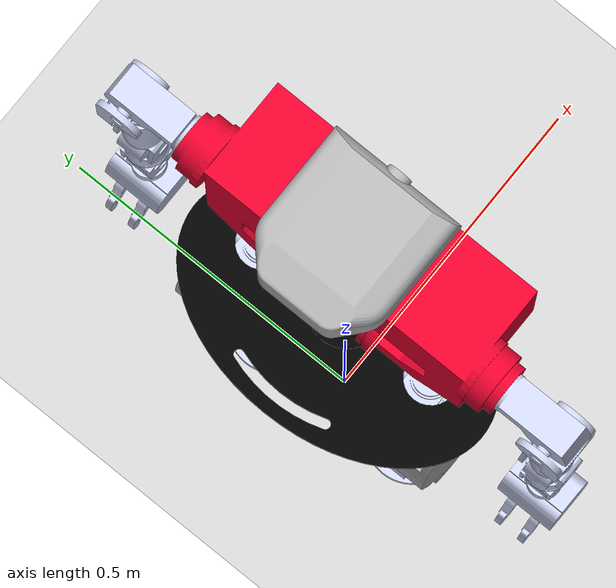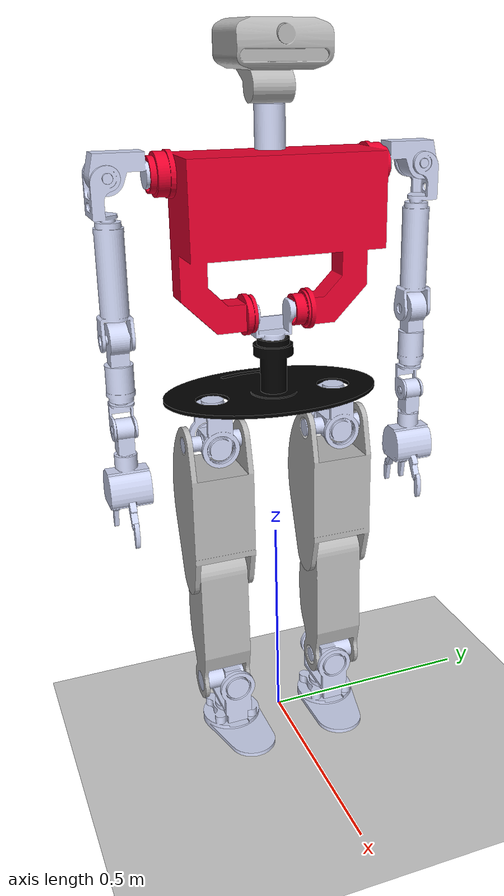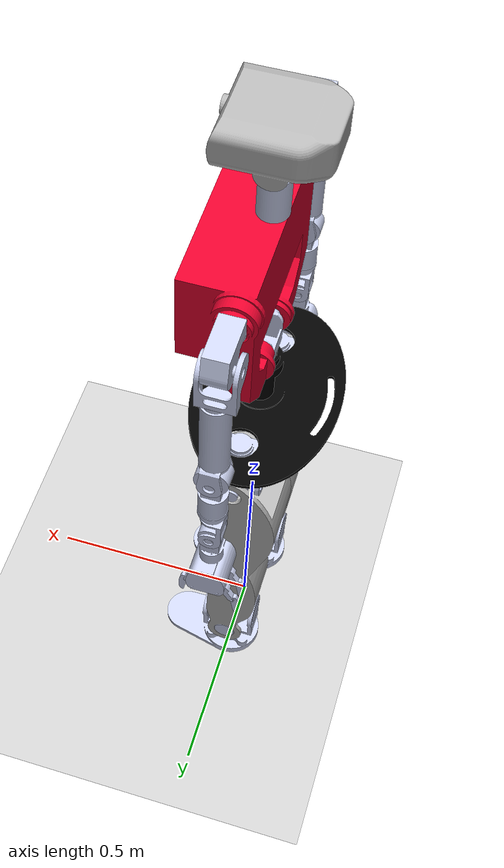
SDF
<?xml version="1.0"?>
<sdf version="1.6">
  <world name="default">

    <include>
      <uri>model://sun</uri>
    </include>

    <include>
      <uri>model://ground_plane</uri>
    </include>

    <include>
      <uri>model://teo_lacqueyFetch</uri>
    </include>

  </world>
</sdf>

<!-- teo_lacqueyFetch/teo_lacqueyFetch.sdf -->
<sdf version='1.6'>
  <model name='TEO_lacqueyFetch'>

    <include>
      <uri>model://teo</uri>
    </include>

    <include>
      <pose>0 -0.34692 0.8122 0 -0 0</pose>
      <uri>model://teo_lacqueyFetch/rightLacqueyFetch</uri>
    </include>

    <joint name='RightWrist' type='fixed'>
      <parent>TEO::TEO_rightArm::FrontalRightWrist_link</parent>
      <child>TEO_rightLacqueyFetch::RightWrist_link</child>
    </joint>

    <include>
      <pose>0 0.34692 0.8122 0 -0 0</pose>
      <uri>model://teo_lacqueyFetch/leftLacqueyFetch</uri>
    </include>

    <joint name='LeftWrist' type='fixed'>
      <parent>TEO::TEO_leftArm::FrontalLeftWrist_link</parent>
      <child>TEO_leftLacqueyFetch::LeftWrist_link</child>
    </joint>

    <plugin name='robotinterface_teo_lacqueyFetch' filename='libgazebo_yarp_robotinterface.so'>
      <yarpRobotInterfaceConfigurationFile>model://teo_lacqueyFetch/conf/teo_lacqueyFetch_nws.xml</yarpRobotInterfaceConfigurationFile>
    </plugin>

  </model>
</sdf>

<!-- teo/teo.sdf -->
<sdf version='1.6'>
  <model name='TEO'>

    <pose>0 0 0.845 0 -0 0</pose>

    <link name='RootWaist_links'>
      <pose>0 0 0 0 -0 0</pose>
      <inertial>
        <pose>-0.010985 -0.000323 0.033148 0 -0 0</pose>
        <mass>2.5</mass>
        <inertia>
          <ixx>0.038530767</ixx>
          <ixy>-0.000000135</ixy>
          <ixz>0.000238121</ixz>
          <iyy>0.017354343</iyy>
          <iyz>-4.8e-10</iyz>
          <izz>0.053231634</izz>
        </inertia>
      </inertial>
      <visual name='RootWaist_links_visual'>
        <geometry>
          <mesh>
            <uri>model://teo/meshes/visual/RootWaist_links.dae</uri>
          </mesh>
        </geometry>
        <material>
          <ambient>0 0 0 1</ambient>
          <diffuse>0 0 0 1</diffuse>
          <specular>0 0 0 1</specular>
          <emissive>0 0 0 1</emissive>
        </material>
      </visual>
      <collision name='RootWaist_links_collision'>
        <geometry>
          <mesh>
            <uri>model://teo/meshes/collision/RootWaist_links.stl</uri>
          </mesh>
        </geometry>
      </collision>
    </link>

    <include>
      <pose>0 0 0.1932 0 -0 0</pose>
      <uri>model://teo/trunk</uri>
    </include>

    <include>
      <pose>0 0 0.6282 0 -0 0</pose>
      <uri>model://teo/head</uri>
    </include>

    <include>
      <pose>0 -0.26292 0.4982 0 -0 0</pose>
      <uri>model://teo/rightArm</uri>
    </include>

    <include>
      <pose>0 0.26292 0.4982 0 -0 0</pose>
      <uri>model://teo/leftArm</uri>
    </include>

    <include>
      <pose>0 -0.146 0 0 -0 0</pose>
      <uri>model://teo/rightLeg</uri>
    </include>

    <include>
      <pose>0 0.146 0 0 -0 0</pose>
      <uri>model://teo/leftLeg</uri>
    </include>

    <plugin name='robotinterface_teo_yarp' filename='libgazebo_yarp_robotinterface.so'>
      <yarpRobotInterfaceConfigurationFile>model://teo/conf/teo_nws_yarp.xml</yarpRobotInterfaceConfigurationFile>
    </plugin>

    <plugin name='robotinterface_teo_ros2' filename='libgazebo_yarp_robotinterface.so'>
      <yarpRobotInterfaceConfigurationFile>model://teo/conf/teo_nws_ros2.xml</yarpRobotInterfaceConfigurationFile>
    </plugin>

    <plugin name='externalwrench' filename='libgazebo_yarp_externalwrench.so' />

  </model>
</sdf>

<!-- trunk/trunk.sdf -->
<sdf version='1.6'>
  <model name='TEO_trunk'>

    <link name='AxialWaist_link'>
      <pose>0 0 0 0 -0 0</pose>
      <inertial>
        <pose>-0.002235 -0.000979 -0.018814 0 -0 0</pose>
        <mass>1</mass>
        <inertia>
          <ixx>0.001977587</ixx>
          <ixy>0.00000206</ixy>
          <ixz>0.0000297</ixz>
          <iyy>0.000899729</iyy>
          <iyz>-0.00000307</iyz>
          <izz>0.001471749</izz>
        </inertia>
      </inertial>
      <visual name='AxialWaist_visual'>
        <geometry>
          <mesh>
            <uri>model://teo/meshes/visual/AxialWaist.dae</uri>
          </mesh>
        </geometry>
        <material>
          <ambient>0.792157 0.819608 0.933333 1</ambient>
          <diffuse>0.792157 0.819608 0.933333 1</diffuse>
          <specular>0.633726 0.655686 0.746667 1</specular>
          <emissive>0 0 0 1</emissive>
        </material>
      </visual>
      <collision name='AxialWaist_collision'>
        <geometry>
          <mesh>
            <uri>model://teo/meshes/collision/AxialWaist.stl</uri>
          </mesh>
        </geometry>
      </collision>
    </link>

    <joint name='AxialWaist' type='revolute'>
      <parent>TEO::RootWaist_links</parent>
      <child>TEO_trunk::AxialWaist_link</child>
      <axis>
        <xyz>0 0 1</xyz>
        <limit>
          <lower>-1.03</lower>
          <upper>0.81</upper>
        </limit>
        <dynamics>
          <damping>0.001</damping>
          <friction>0.7</friction>
        </dynamics>
      </axis>
    </joint>

    <link name='FrontalWaist_link'>
      <pose>0 0 0 0 -0 0</pose>
      <inertial>
        <pose>0.032985 -0.007876 0.220667 0 -0 0</pose>
        <mass>14.23545</mass>
        <inertia>
          <ixx>0.33566514</ixx>
          <ixy>0.000162127</ixy>
          <ixz>0.011858221</ixz>
          <iyy>0.126531585</iyy>
          <iyz>0.000914091</iyz>
          <izz>0.263359225</izz>
        </inertia>
      </inertial>
      <visual name='FrontalWaist_visual'>
        <geometry>
          <mesh>
            <uri>model://teo/meshes/visual/RootWaist.dae</uri>
          </mesh>
        </geometry>
        <material>
          <ambient>0.905882 0 0.172549 1</ambient>
          <diffuse>0.905882 0 0.172549 1</diffuse>
          <specular>0.452941 0 0.086275 1</specular>
          <emissive>0 0 0 1</emissive>
        </material>
      </visual>
      <collision name='FrontalWaist_collision'>
        <geometry>
          <mesh>
            <uri>model://teo/meshes/collision/RootWaist.stl</uri>
          </mesh>
        </geometry>
      </collision>
      <sensor name='waist_imu' type='imu'>
        <pose>0 0 0.05 0 3.14159 0</pose>
        <always_on>true</always_on>
        <update_rate>200</update_rate>
        <plugin name='waist_imu_plugin' filename='libgazebo_yarp_imu.so'>
          <yarpConfigurationString>(yarpDeviceName imu) (disableImplicitNetworkWrapper)</yarpConfigurationString>
        </plugin>
      </sensor>
    </link>

    <joint name='FrontalWaist' type='revolute'>
      <parent>TEO_trunk::AxialWaist_link</parent>
      <child>TEO_trunk::FrontalWaist_link</child>
      <axis>
        <xyz>0 1 0</xyz>
        <limit>
          <lower>-0.18</lower>
          <upper>1.58</upper>
        </limit>
        <dynamics>
          <damping>0.001</damping>
          <friction>0.7</friction>
        </dynamics>
      </axis>
    </joint>

    <plugin name='controlboard_trunk' filename='libgazebo_yarp_controlboard.so'>
      <yarpConfigurationFile>model://teo/conf/gazebo_teo_trunk.ini</yarpConfigurationFile>
    </plugin>

  </model>
</sdf>

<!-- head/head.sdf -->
<sdf version='1.6'>
  <model name='TEO_head'>

    <link name='AxialNeck_link'>
      <pose>0 0 0 0 -0 0</pose>
      <inertial>
        <pose>0.000302 0.000193 -0.0452 0 -0 0</pose>
        <mass>1</mass>
        <inertia>
          <ixx>0.000939063</ixx>
          <ixy>0</ixy>
          <ixz>0</ixz>
          <iyy>0.000939063</iyy>
          <iyz>0</iyz>
          <izz>0.000528125</izz>
        </inertia>
      </inertial>
      <visual name='AxialNeck_visual'>
        <geometry>
          <mesh>
            <uri>model://teo/meshes/visual/AxialNeck.dae</uri>
          </mesh>
        </geometry>
        <material>
          <ambient>0.792157 0.819608 0.933333 1</ambient>
          <diffuse>0.792157 0.819608 0.933333 1</diffuse>
          <specular>0.633726 0.65568602 0.74666703 1</specular>
          <emissive>0 0 0 1</emissive>
        </material>
      </visual>
      <collision name='AxialNeck_collision'>
        <geometry>
          <mesh>
            <uri>model://teo/meshes/collision/AxialNeck.stl</uri>
          </mesh>
        </geometry>
      </collision>
    </link>

    <joint name='AxialNeck' type='revolute'>
      <parent>TEO_trunk::FrontalTrunk_link</parent>
      <child>TEO_head::AxialNeck_link</child>
      <axis>
        <xyz>0 0 1</xyz>
        <limit>
          <lower>-1.22</lower>
          <upper>1.22</upper>
        </limit>
        <dynamics>
          <damping>0.001</damping>
          <friction>0.7</friction>
        </dynamics>
      </axis>
    </joint>

    <link name='FrontalNeck_link'>
      <pose>0 0 0.0325 0 -0 0</pose>
      <inertial>
        <pose>-0.002729 -0.000086 0.067027 0 -0 0</pose>
        <mass>2</mass>
        <inertia>
          <ixx>0.007599322</ixx>
          <ixy>5.83e-09</ixy>
          <ixz>0.0000658</ixz>
          <iyy>0.008325273</iyy>
          <iyz>-7.43e-09</iyz>
          <izz>0.011403464</izz>
        </inertia>
      </inertial>
      <visual name='FrontalNeck_visual'>
        <geometry>
          <mesh>
            <uri>model://teo/meshes/visual/FrontalNeck.dae</uri>
          </mesh>
        </geometry>
        <material>
          <ambient>1 1 1 1</ambient>
          <diffuse>0.7 0.7 0.7 1</diffuse>
          <specular>0.2 0.2 0.2 1</specular>
          <emissive>0 0 0 1</emissive>
        </material>
      </visual>
      <collision name='FrontalNeck_collision'>
        <geometry>
          <mesh>
            <uri>model://teo/meshes/collision/FrontalNeck.stl</uri>
          </mesh>
        </geometry>
      </collision>
      <sensor name='xtion_rgbd' type='depth'>
        <pose>0 0 0 0 -0 0</pose>
        <camera>
          <horizontal_fov>1.01</horizontal_fov>
          <image>
            <width>640</width>
            <height>480</height>
          </image>
          <clip>
            <near>0.8</near>
            <far>3.5</far>
          </clip>
          <lens>
            <intrinsics>
              <fx>525</fx>
              <fy>525</fy>
              <cx>319.5</cx>
              <cy>239.5</cy>
            </intrinsics>
          </lens>
        </camera>
        <always_on>1</always_on>
        <update_rate>30</update_rate>
        <visualize>1</visualize>
        <plugin name='xtion_rgbd_plugin' filename='libgazebo_yarp_depthCamera.so'>
          <yarpConfigurationString>(yarpDeviceName depthcamera) (disableImplicitNetworkWrapper)</yarpConfigurationString>
        </plugin>
      </sensor>
    </link>

    <joint name='FrontalNeck' type='revolute'>
      <parent>TEO_head::AxialNeck_link</parent>
      <child>TEO_head::FrontalNeck_link</child>
      <axis>
        <xyz>0 1 0</xyz>
        <limit>
          <lower>-0.51</lower>
          <upper>0.15</upper>
        </limit>
        <dynamics>
          <damping>0.001</damping>
          <friction>0.7</friction>
        </dynamics>
      </axis>
    </joint>

    <plugin name='controlboard_head' filename='libgazebo_yarp_controlboard.so'>
      <yarpConfigurationFile>model://teo/conf/gazebo_teo_head.ini</yarpConfigurationFile>
    </plugin>

  </model>
</sdf>

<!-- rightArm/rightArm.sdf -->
<sdf version='1.6'>
  <model name='TEO_rightArm'>

    <link name='FrontalRightShoulder_link'>
      <pose>0 0 0 0 -0 0</pose>
      <inertial>
        <pose>-0.002267 -0.056164 0.008456 0 -0 0</pose>
        <mass>2</mass>
        <inertia>
          <ixx>0.004226791</ixx>
          <ixy>0.0000844</ixy>
          <ixz>-0.0000117</ixz>
          <iyy>0.002127281</iyy>
          <iyz>-0.000280493</iyz>
          <izz>0.004093161</izz>
        </inertia>
      </inertial>
      <visual name='FrontalRightShoulder_visual'>
        <geometry>
          <mesh>
            <uri>model://teo/meshes/visual/FrontalRightShoulder.dae</uri>
          </mesh>
        </geometry>
        <material>
          <ambient>0.792157 0.819608 0.933333 1</ambient>
          <diffuse>0.792157 0.819608 0.933333 1</diffuse>
          <specular>0.633726 0.655686 0.746667 1</specular>
          <emissive>0 0 0 1</emissive>
        </material>
      </visual>
      <collision name='FrontalRightShoulder_collision'>
        <geometry>
          <mesh>
            <uri>model://teo/meshes/collision/FrontalRightShoulder.stl</uri>
          </mesh>
        </geometry>
      </collision>
    </link>

    <joint name='FrontalRightShoulder' type='revolute'>
      <parent>TEO_trunk::FrontalWaist_link</parent>
      <child>TEO_rightArm::FrontalRightShoulder_link</child>
      <axis>
        <xyz>0 1 0</xyz>
        <limit>
          <lower>-1.71</lower>
          <upper>1.85</upper>
        </limit>
        <dynamics>
          <damping>0.001</damping>
          <friction>0.7</friction>
        </dynamics>
      </axis>
    </joint>

    <link name='SagittalRightShoulder_link'>
      <pose>0 -0.084 0 0 -0 0</pose>
      <inertial>
        <pose>-0.008472 -0.004826 -0.027321 0 -0 0</pose>
        <mass>1</mass>
        <inertia>
          <ixx>0.001610932</ixx>
          <ixy>-0.000069</ixy>
          <ixz>-0.000214886</ixz>
          <iyy>0.002187776</iyy>
          <iyz>-0.000069</iyz>
          <izz>0.001173533</izz>
        </inertia>
      </inertial>
      <visual name='SagittalRightShoulder_visual'>
        <geometry>
          <mesh>
            <uri>model://teo/meshes/visual/SagittalRightShoulder.dae</uri>
          </mesh>
        </geometry>
        <material>
          <ambient>0.792157 0.819608 0.933333 1</ambient>
          <diffuse>0.792157 0.819608 0.933333 1</diffuse>
          <specular>0.633726 0.655686 0.746667 1</specular>
          <emissive>0 0 0 1</emissive>
        </material>
      </visual>
      <collision name='SagittalRightShoulder_collision'>
        <geometry>
          <mesh>
            <uri>model://teo/meshes/collision/SagittalRightShoulder.stl</uri>
          </mesh>
        </geometry>
      </collision>
    </link>

    <joint name='SagittalRightShoulder' type='revolute'>
      <parent>TEO_rightArm::FrontalRightShoulder_link</parent>
      <child>TEO_rightArm::SagittalRightShoulder_link</child>
      <axis>
        <xyz>1 0 0</xyz>
        <limit>
          <lower>-1.32</lower>
          <upper>0.39</upper>
        </limit>
        <dynamics>
          <damping>0.001</damping>
          <friction>0.7</friction>
        </dynamics>
      </axis>
    </joint>

    <link name='AxialRightShoulder_link'>
      <pose>0 -0.084 -0.329 0 -0 0</pose>
      <inertial>
        <pose>0.000347 0.000245 0.107382 0 -0 0</pose>
        <mass>1</mass>
      </inertial>
      <visual name='AxialRightShoulder_visual'>
        <geometry>
          <mesh>
            <uri>model://teo/meshes/visual/AxialRightShoulder.dae</uri>
          </mesh>
        </geometry>
        <material>
          <ambient>0.792157 0.819608 0.933333 1</ambient>
          <diffuse>0.792157 0.819608 0.933333 1</diffuse>
          <specular>0.633726 0.655686 0.746667 1</specular>
          <emissive>0 0 0 1</emissive>
        </material>
      </visual>
      <collision name='AxialRightShoulder_collision'>
        <geometry>
          <mesh>
            <uri>model://teo/meshes/collision/AxialRightShoulder.stl</uri>
          </mesh>
        </geometry>
      </collision>
    </link>

    <joint name='AxialRightShoulder' type='revolute'>
      <parent>TEO_rightArm::SagittalRightShoulder_link</parent>
      <child>TEO_rightArm::AxialRightShoulder_link</child>
      <axis>
        <xyz>0 0 1</xyz>
        <limit>
          <lower>-1.4</lower>
          <upper>0.99</upper>
        </limit>
        <dynamics>
          <damping>0.001</damping>
          <friction>0.7</friction>
        </dynamics>
      </axis>
    </joint>

    <link name='FrontalRightElbow_link'>
      <pose>0 -0.084 -0.329 0 -0 0</pose>
      <inertial>
        <pose>0.000237 -0.00004 -0.04998 0 -0 0</pose>
        <mass>1</mass>
        <inertia>
          <ixx>0.002590029</ixx>
          <ixy>0</ixy>
          <ixz>0</ixz>
          <iyy>0.00262307</iyy>
          <iyz>0</iyz>
          <izz>0.000446024</izz>
        </inertia>
      </inertial>
      <visual name='FrontalRightElbow_visual'>
        <geometry>
          <mesh>
            <uri>model://teo/meshes/visual/FrontalRightElbow.dae</uri>
          </mesh>
        </geometry>
        <material>
          <ambient>0.792157 0.819608 0.933333 1</ambient>
          <diffuse>0.792157 0.819608 0.933333 1</diffuse>
          <specular>0.633726 0.655686 0.746667 1</specular>
          <emissive>0 0 0 1</emissive>
        </material>
      </visual>
      <collision name='FrontalRightElbow_collision'>
        <geometry>
          <mesh>
            <uri>model://teo/meshes/collision/FrontalRightElbow.stl</uri>
          </mesh>
        </geometry>
      </collision>
    </link>

    <joint name='FrontalRightElbow' type='revolute'>
      <parent>TEO_rightArm::AxialRightShoulder_link</parent>
      <child>TEO_rightArm::FrontalRightElbow_link</child>
      <axis>
        <xyz>0 1 0</xyz>
        <limit>
          <lower>-1.74</lower>
          <upper>1.72</upper>
        </limit>
        <dynamics>
          <damping>0.001</damping>
          <friction>0.7</friction>
        </dynamics>
      </axis>
    </joint>

    <link name='AxialRightWrist_link'>
      <pose>0 -0.084 -0.531 0 -0 0</pose>
      <inertial>
        <pose>-0.001151 0.000603 0.02464 0 -0 0</pose>
        <mass>0.63149</mass>
      </inertial>
      <visual name='AxialRightWrist_visual'>
        <geometry>
          <mesh>
            <uri>model://teo/meshes/visual/AxialRightWrist.dae</uri>
          </mesh>
        </geometry>
        <material>
          <ambient>0.792157 0.819608 0.933333 1</ambient>
          <diffuse>0.792157 0.819608 0.933333 1</diffuse>
          <specular>0.633726 0.655686 0.746667 1</specular>
          <emissive>0 0 0 1</emissive>
        </material>
      </visual>
      <collision name='AxialRightWrist_collision'>
        <geometry>
          <mesh>
            <uri>model://teo/meshes/collision/AxialRightWrist.stl</uri>
          </mesh>
        </geometry>
      </collision>
    </link>

    <joint name='AxialRightWrist' type='revolute'>
      <parent>TEO_rightArm::FrontalRightElbow_link</parent>
      <child>TEO_rightArm::AxialRightWrist_link</child>
      <axis>
        <xyz>0 0 1</xyz>
        <limit>
          <lower>-1.4</lower>
          <upper>1.74</upper>
        </limit>
        <dynamics>
          <damping>0.001</damping>
          <friction>0.7</friction>
        </dynamics>
      </axis>
    </joint>

    <link name='FrontalRightWrist_link'>
      <pose>0 -0.084 -0.531 0 -0 0</pose>
      <inertial>
        <pose>-0.002314 0.00007 -0.108635 0 -0 0</pose>
        <mass>0.72</mass>
        <inertia>
          <ixx>0.005329957</ixx>
          <ixy>0.000000102</ixy>
          <ixz>0.000114751</ixz>
          <iyy>0.005345282</iyy>
          <iyz>-0.00000807</iyz>
          <izz>0.000883179</izz>
        </inertia>
      </inertial>
      <visual name='FrontalRightWrist_visual'>
        <pose>0 0 0 -1.5708 0 0</pose>
        <geometry>
          <mesh>
            <scale>0.001 0.001 0.001</scale>
            <uri>model://teo/meshes/visual/FrontalRightWrist.dae</uri>
          </mesh>
        </geometry>
        <material>
          <ambient>0.792157 0.819608 0.933333 1</ambient>
          <diffuse>0.792157 0.819608 0.933333 1</diffuse>
          <specular>0.633726 0.655686 0.746667 1</specular>
          <emissive>0 0 0 1</emissive>
        </material>
      </visual>
      <collision name='FrontalRightWrist_collision'>
        <pose>0 0 0 -1.5708 0 0</pose>
        <geometry>
          <mesh>
            <scale>0.001 0.001 0.001</scale>
            <uri>model://teo/meshes/collision/FrontalRightWrist.stl</uri>
          </mesh>
        </geometry>
      </collision>
    </link>

    <joint name='FrontalRightWrist' type='revolute'>
      <parent>TEO_rightArm::AxialRightWrist_link</parent>
      <child>TEO_rightArm::FrontalRightWrist_link</child>
      <axis>
        <xyz>0 1 0</xyz>
        <limit>
          <lower>-2.01</lower>
          <upper>0.78</upper>
        </limit>
        <dynamics>
          <damping>0.001</damping>
          <friction>0.7</friction>
        </dynamics>
      </axis>
    </joint>

    <link name='RightSensorPlate_link'>
      <pose>0 -0.084 -0.63401 0 -0 0</pose>
      <inertial>
        <mass>0.001</mass> <!-- can't be zero! -->
      </inertial>
    </link>

    <joint name='RightSensorPlate' type='fixed'>
      <parent>TEO_rightArm::FrontalRightWrist_link</parent>
      <child>TEO_rightArm::RightSensorPlate_link</child>
      <pose>0 0 0 0 3.141593 0</pose>
      <sensor name="rightArm_ft" type="force_torque">
        <always_on>true</always_on>
        <update_rate>200</update_rate>
        <force_torque>
          <frame>sensor</frame>
          <measure_direction>child_to_parent</measure_direction>
        </force_torque>
        <plugin name='rightArm_ft_plugin' filename='libgazebo_yarp_forcetorque.so'>
          <yarpConfigurationString>(yarpDeviceName forceTorque_rightArm) (disableImplicitNetworkWrapper)</yarpConfigurationString>
        </plugin>
      </sensor>
    </joint>

    <plugin name='controlboard_rightArm' filename='libgazebo_yarp_controlboard.so'>
      <yarpConfigurationFile>model://teo/conf/gazebo_teo_rightArm.ini</yarpConfigurationFile>
    </plugin>

  </model>
</sdf>

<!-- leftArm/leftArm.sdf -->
<sdf version='1.6'>
  <model name='TEO_leftArm'>

    <link name='FrontalLeftShoulder_link'>
      <pose>0 0 0 0 -0 0</pose>
      <inertial>
        <pose>-0.002272 0.056186 0.008165 0 -0 0</pose>
        <mass>2</mass>
        <inertia>
          <ixx>0.004226791</ixx>
          <ixy>-0.0000855</ixy>
          <ixz>-0.0000117</ixz>
          <iyy>0.00212734</iyy>
          <iyz>0.000280493</iyz>
          <izz>0.00409322</izz>
        </inertia>
      </inertial>
      <visual name='FrontalLeftShoulder_visual'>
        <geometry>
          <mesh>
            <uri>model://teo/meshes/visual/FrontalLeftShoulder.dae</uri>
          </mesh>
        </geometry>
        <material>
          <ambient>0.792157 0.819608 0.933333 1</ambient>
          <diffuse>0.792157 0.819608 0.933333 1</diffuse>
          <specular>0.633726 0.655686 0.746667 1</specular>
          <emissive>0 0 0 1</emissive>
        </material>
      </visual>
      <collision name='FrontalLeftShoulder_collision'>
        <geometry>
          <mesh>
            <uri>model://teo/meshes/collision/FrontalLeftShoulder.stl</uri>
          </mesh>
        </geometry>
      </collision>
    </link>

    <joint name='FrontalLeftShoulder' type='revolute'>
      <parent>TEO_trunk::FrontalWaist_link</parent>
      <child>TEO_leftArm::FrontalLeftShoulder_link</child>
      <axis>
        <xyz>0 1 0</xyz>
        <limit>
          <lower>-1.69</lower>
          <upper>1.98</upper>
        </limit>
        <dynamics>
          <damping>0.001</damping>
          <friction>0.7</friction>
        </dynamics>
      </axis>
    </joint>

    <link name='SagittalLeftShoulder_link'>
      <pose>0 0.084 0 0 -0 0</pose>
      <inertial>
        <pose>-0.008047 0.004937 -0.027619 0 -0 0</pose>
        <mass>1</mass>
        <inertia>
          <ixx>0.001610921</ixx>
          <ixy>0.000069</ixy>
          <ixz>-0.000214885</ixz>
          <iyy>0.002187768</iyy>
          <iyz>-0.000163004</iyz>
          <izz>0.001173531</izz>
        </inertia>
      </inertial>
      <visual name='SagittalLeftShoulder_visual'>
        <geometry>
          <mesh>
            <uri>model://teo/meshes/visual/SagittalLeftShoulder.dae</uri>
          </mesh>
        </geometry>
        <material>
          <ambient>0.792157 0.819608 0.933333 1</ambient>
          <diffuse>0.792157 0.819608 0.933333 1</diffuse>
          <specular>0.633726 0.655686 0.746667 1</specular>
          <emissive>0 0 0 1</emissive>
        </material>
      </visual>
      <collision name='SagittalLeftShoulder_collision'>
        <geometry>
          <mesh>
            <uri>model://teo/meshes/collision/SagittalLeftShoulder.stl</uri>
          </mesh>
        </geometry>
      </collision>
    </link>

    <joint name='SagittalLeftShoulder' type='revolute'>
      <parent>TEO_leftArm::FrontalLeftShoulder_link</parent>
      <child>TEO_leftArm::SagittalLeftShoulder_link</child>
      <axis>
        <xyz>1 0 0</xyz>
        <limit>
          <lower>-0.42</lower>
          <upper>1.34</upper>
        </limit>
        <dynamics>
          <damping>0.001</damping>
          <friction>0.7</friction>
        </dynamics>
      </axis>
    </joint>

    <link name='AxialLeftShoulder_link'>
      <pose>0 0.084 -0.329 0 -0 0</pose>
      <inertial>
        <pose>-0.000172 0.000249 0.100649 0 -0 0</pose>
      </inertial>
      <visual name='AxialLeftShoulder_visual'>
        <geometry>
          <mesh>
            <uri>model://teo/meshes/visual/AxialLeftShoulder.dae</uri>
          </mesh>
        </geometry>
        <material>
          <ambient>0.792157 0.819608 0.933333 1</ambient>
          <diffuse>0.792157 0.819608 0.933333 1</diffuse>
          <specular>0.633726 0.655686 0.746667 1</specular>
          <emissive>0 0 0 1</emissive>
        </material>
      </visual>
      <collision name='AxialLeftShoulder_collision'>
        <geometry>
          <mesh>
            <uri>model://teo/meshes/collision/AxialLeftShoulder.stl</uri>
          </mesh>
        </geometry>
      </collision>
    </link>

    <joint name='AxialLeftShoulder' type='revolute'>
      <parent>TEO_leftArm::SagittalLeftShoulder_link</parent>
      <child>TEO_leftArm::AxialLeftShoulder_link</child>
      <axis>
        <xyz>0 0 1</xyz>
        <limit>
          <lower>-0.9</lower>
          <upper>1.47</upper>
        </limit>
        <dynamics>
          <damping>0.001</damping>
          <friction>0.7</friction>
        </dynamics>
      </axis>
    </joint>

    <link name='FrontalLeftElbow_link'>
      <pose>0 0.084 -0.329 0 -0 0</pose>
      <inertial>
        <pose>0.000287 -0.000116 -0.053185 0 -0 0</pose>
        <mass>1</mass>
        <inertia>
          <ixx>0.002590029</ixx>
          <ixy>0</ixy>
          <ixz>0</ixz>
          <iyy>0.00262307</iyy>
          <iyz>0</iyz>
          <izz>0.000446024</izz>
        </inertia>
      </inertial>
      <visual name='FrontalLeftElbow_visual'>
        <geometry>
          <mesh>
            <uri>model://teo/meshes/visual/FrontalLeftElbow.dae</uri>
          </mesh>
        </geometry>
        <material>
          <ambient>0.792157 0.819608 0.933333 1</ambient>
          <diffuse>0.792157 0.819608 0.933333 1</diffuse>
          <specular>0.633726 0.655686 0.746667 1</specular>
          <emissive>0 0 0 1</emissive>
        </material>
      </visual>
      <collision name='FrontalLeftElbow_collision'>
        <geometry>
          <mesh>
            <uri>model://teo/meshes/collision/FrontalLeftElbow.stl</uri>
          </mesh>
        </geometry>
      </collision>
    </link>

    <joint name='FrontalLeftElbow' type='revolute'>
      <parent>TEO_leftArm::AxialLeftShoulder_link</parent>
      <child>TEO_leftArm::FrontalLeftElbow_link</child>
      <axis>
        <xyz>0 1 0</xyz>
        <limit>
          <lower>-1.76</lower>
          <upper>1.69</upper>
        </limit>
        <dynamics>
          <damping>0.001</damping>
          <friction>0.7</friction>
        </dynamics>
      </axis>
    </joint>

    <link name='AxialLeftWrist_link'>
      <pose>0 0.084 -0.531 0 -0 0</pose>
      <inertial>
        <pose>-0.001151 0.000603 0.02464 0 -0 0</pose>
        <mass>0.63149</mass>
      </inertial>
      <visual name='AxialLeftWrist_visual'>
        <geometry>
          <mesh>
            <uri>model://teo/meshes/visual/AxialLeftWrist.dae</uri>
          </mesh>
        </geometry>
        <material>
          <ambient>0.792157 0.819608 0.933333 1</ambient>
          <diffuse>0.792157 0.819608 0.933333 1</diffuse>
          <specular>0.633726 0.655686 0.746667 1</specular>
          <emissive>0 0 0 1</emissive>
        </material>
      </visual>
      <collision name='AxialLeftWrist_collision'>
        <geometry>
          <mesh>
            <uri>model://teo/meshes/collision/AxialLeftWrist.stl</uri>
          </mesh>
        </geometry>
      </collision>
    </link>

    <joint name='AxialLeftWrist' type='revolute'>
      <parent>TEO_leftArm::FrontalLeftElbow_link</parent>
      <child>TEO_leftArm::AxialLeftWrist_link</child>
      <axis>
        <xyz>0 0 1</xyz>
        <limit>
          <lower>-1.77</lower>
          <upper>1.33</upper>
        </limit>
        <dynamics>
          <damping>0.001</damping>
          <friction>0.7</friction>
        </dynamics>
      </axis>
    </joint>

    <link name='FrontalLeftWrist_link'>
      <pose>0 0.084 -0.531 0 -0 0</pose>
      <inertial>
        <pose>-0.002314 0.00007 -0.108635 0 -0 0</pose>
        <mass>0.72</mass>
        <inertia>
          <ixx>0.005330647</ixx>
          <ixy>0.000000128</ixy>
          <ixz>0.000100487</ixz>
          <iyy>0.005345282</iyy>
          <iyz>-0.00000807</iyz>
          <izz>0.000882489</izz>
        </inertia>
      </inertial>
      <visual name='FrontalLeftWrist_visual'>
        <pose>0 0 0 -1.5708 0 0</pose>
        <geometry>
          <mesh>
            <scale>0.001 0.001 0.001</scale>
            <uri>model://teo/meshes/visual/FrontalLeftWrist.dae</uri>
          </mesh>
        </geometry>
        <material>
          <ambient>0.792157 0.819608 0.933333 1</ambient>
          <diffuse>0.792157 0.819608 0.933333 1</diffuse>
          <specular>0.633726 0.655686 0.746667 1</specular>
          <emissive>0 0 0 1</emissive>
        </material>
      </visual>
      <collision name='FrontalLeftWrist_collision'>
        <pose>0 0 0 -1.5708 0 0</pose>
        <geometry>
          <mesh>
            <scale>0.001 0.001 0.001</scale>
            <uri>model://teo/meshes/collision/FrontalLeftWrist.stl</uri>
          </mesh>
        </geometry>
      </collision>
    </link>

    <joint name='FrontalLeftWrist' type='revolute'>
      <parent>TEO_leftArm::AxialLeftWrist_link</parent>
      <child>TEO_leftArm::FrontalLeftWrist_link</child>
      <axis>
        <xyz>0 1 0</xyz>
        <limit>
          <lower>-1.98</lower>
          <upper>1.07</upper>
        </limit>
        <dynamics>
          <damping>0.001</damping>
          <friction>0.7</friction>
        </dynamics>
      </axis>
    </joint>

    <link name='LeftSensorPlate_link'>
      <pose>0 0.084 -0.63401 0 -0 0</pose>
      <inertial>
        <mass>0.001</mass> <!-- can't be zero! -->
      </inertial>
    </link>

    <joint name='LeftSensorPlate' type='fixed'>
      <parent>TEO_leftArm::FrontalLeftWrist_link</parent>
      <child>TEO_leftArm::LeftSensorPlate_link</child>
      <pose>0 0 0 0 3.141593 0</pose>
      <sensor name="leftArm_ft" type="force_torque">
        <always_on>true</always_on>
        <update_rate>200</update_rate>
        <force_torque>
          <frame>sensor</frame>
          <measure_direction>child_to_parent</measure_direction>
        </force_torque>
        <plugin name='leftArm_ft_plugin' filename='libgazebo_yarp_forcetorque.so'>
          <yarpConfigurationString>(yarpDeviceName forceTorque_leftArm) (disableImplicitNetworkWrapper)</yarpConfigurationString>
        </plugin>
      </sensor>
    </joint>

    <plugin name='controlboard_leftArm' filename='libgazebo_yarp_controlboard.so'>
      <yarpConfigurationFile>model://teo/conf/gazebo_teo_leftArm.ini</yarpConfigurationFile>
    </plugin>

  </model>
</sdf>

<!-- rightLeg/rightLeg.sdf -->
<sdf version='1.6'>
  <model name='TEO_rightLeg'>

    <link name='AxialRightHip_link'>
      <pose>0 0 0 0 -0 0</pose>
      <inertial>
        <pose>0.000089 -0.000389 -0.065985 0 -0 0</pose>
        <mass>0.84945</mass>
        <inertia>
          <ixx>0.001564202</ixx>
          <ixy>0</ixy>
          <ixz>0.0000025</ixz>
          <iyy>0.002645089</iyy>
          <iyz>0</iyz>
          <izz>0.001706349</izz>
        </inertia>
      </inertial>
      <visual name='AxialRightHip_visual'>
        <geometry>
          <mesh>
            <uri>model://teo/meshes/visual/AxialRightHip.dae</uri>
          </mesh>
        </geometry>
        <material>
          <ambient>0.792157 0.819608 0.933333 1</ambient>
          <diffuse>0.792157 0.819608 0.933333 1</diffuse>
          <specular>0.633726 0.655686 0.746667 1</specular>
          <emissive>0 0 0 1</emissive>
        </material>
      </visual>
      <collision name='AxialRightHip_collision'>
        <geometry>
          <mesh>
            <uri>model://teo/meshes/collision/AxialRightHip.stl</uri>
          </mesh>
        </geometry>
      </collision>
    </link>

    <joint name='AxialRightHip' type='revolute'>
      <parent>TEO::RootWaist_links</parent>
      <child>TEO_rightLeg::AxialRightHip_link</child>
      <axis>
        <xyz>0 0 1</xyz>
        <limit>
          <lower>-0.57</lower>
          <upper>0.49</upper>
        </limit>
        <dynamics>
          <damping>0.001</damping>
          <friction>0.7</friction>
        </dynamics>
      </axis>
    </joint>

    <link name='SagittalRightHip_link'>
      <pose>0 0 -0.092 0 -0 0</pose>
      <inertial>
        <pose>-0.000636 0.001058 0.000349 0 -0 0</pose>
        <mass>1.45459</mass>
        <inertia>
          <ixx>0.001545815</ixx>
          <ixy>-0.00000297</ixy>
          <ixz>-4.07e-09</ixz>
          <iyy>0.00119159</iyy>
          <iyz>9.16e-09</iyz>
          <izz>0.002270482</izz>
        </inertia>
      </inertial>
      <visual name='SagittalRightHip_visual'>
        <geometry>
          <mesh>
            <uri>model://teo/meshes/visual/SagittalRightHip.dae</uri>
          </mesh>
        </geometry>
        <material>
          <ambient>0.792157 0.819608 0.933333 1</ambient>
          <diffuse>0.792157 0.819608 0.933333 1</diffuse>
          <specular>0.633726 0.655686 0.746667 1</specular>
          <emissive>0 0 0 1</emissive>
        </material>
      </visual>
      <collision name='SagittalRightHip_collision'>
        <geometry>
          <mesh>
            <uri>model://teo/meshes/collision/SagittalRightHip.stl</uri>
          </mesh>
        </geometry>
      </collision>
    </link>

    <joint name='SagittalRightHip' type='revolute'>
      <parent>TEO_rightLeg::AxialRightHip_link</parent>
      <child>TEO_rightLeg::SagittalRightHip_link</child>
      <axis>
        <xyz>1 0 0</xyz>
        <limit>
          <lower>-0.25</lower>
          <upper>0.22</upper>
        </limit>
        <dynamics>
          <damping>0.001</damping>
          <friction>0.7</friction>
        </dynamics>
      </axis>
    </joint>

    <link name='FrontalRightHip_link'>
      <pose>0 0 -0.092 0 -0 0</pose>
      <inertial>
        <pose>-0.010862 -0.000006 -0.161205 0 -0 0</pose>
        <mass>1.89152</mass>
        <inertia>
          <ixx>0.015077735</ixx>
          <ixy>0</ixy>
          <ixz>-0.000442074</ixz>
          <iyy>0.015112044</iyy>
          <iyz>0</iyz>
          <izz>0.00747346</izz>
        </inertia>
      </inertial>
      <visual name='FrontalRightHip_visual'>
        <geometry>
          <mesh>
            <uri>model://teo/meshes/visual/FrontalRightHip.dae</uri>
          </mesh>
        </geometry>
        <material>
          <ambient>1 1 1 1</ambient>
          <diffuse>0.7 0.7 0.7 1</diffuse>
          <specular>0.2 0.2 0.2 1</specular>
          <emissive>0 0 0 1</emissive>
        </material>
      </visual>
      <collision name='FrontalRightHip_collision'>
        <geometry>
          <mesh>
            <uri>model://teo/meshes/collision/FrontalRightHip.stl</uri>
          </mesh>
        </geometry>
      </collision>
    </link>

    <joint name='FrontalRightHip' type='revolute'>
      <parent>TEO_rightLeg::SagittalRightHip_link</parent>
      <child>TEO_rightLeg::FrontalRightHip_link</child>
      <axis>
        <xyz>0 1 0</xyz>
        <limit>
          <lower>-0.55</lower>
          <upper>0.74</upper>
        </limit>
        <dynamics>
          <damping>0.001</damping>
          <friction>0.7</friction>
        </dynamics>
      </axis>
    </joint>

    <link name='FrontalRightKnee_link'>
      <pose>0 0 -0.422 0 -0 0</pose>
      <inertial>
        <pose>-0.006614 -0.000411 -0.146413 0 -0 0</pose>
        <mass>1.94824</mass>
        <inertia>
          <ixx>0.02186171</ixx>
          <ixy>0</ixy>
          <ixz>0.00000316</ixz>
          <iyy>0.021411109</iyy>
          <iyz>0</iyz>
          <izz>0.003843636</izz>
        </inertia>
      </inertial>
      <visual name='FrontalRightKnee_visual'>
        <geometry>
          <mesh>
            <uri>model://teo/meshes/visual/FrontalRightKnee.dae</uri>
          </mesh>
        </geometry>
        <material>
          <ambient>1 1 1 1</ambient>
          <diffuse>0.7 0.7 0.7 1</diffuse>
          <specular>0.2 0.2 0.2 1</specular>
          <emissive>0 0 0 1</emissive>
        </material>
      </visual>
      <collision name='FrontalRightKnee_collision'>
        <geometry>
          <mesh>
            <uri>model://teo/meshes/collision/FrontalRightKnee.stl</uri>
          </mesh>
        </geometry>
      </collision>
    </link>

    <joint name='FrontalRightKnee' type='revolute'>
      <parent>TEO_rightLeg::FrontalRightHip_link</parent>
      <child>TEO_rightLeg::FrontalRightKnee_link</child>
      <axis>
        <xyz>0 1 0</xyz>
        <limit>
          <lower>-1.07</lower>
          <upper>1.44</upper>
        </limit>
        <dynamics>
          <damping>0.001</damping>
          <friction>0.7</friction>
        </dynamics>
      </axis>
    </joint>

    <link name='FrontalRightAnkle_link'>
      <pose>0 0.0175 -0.722 0 -0 0</pose>
      <inertial>
        <pose>0.002577 -0.013536 0.000182 0 -0 0</pose>
        <mass>1.50359</mass>
        <inertia>
          <ixx>0.001395488</ixx>
          <ixy>0.00000685</ixy>
          <ixz>1e-11</ixz>
          <iyy>0.001589358</iyy>
          <iyz>0</iyz>
          <izz>0.002418657</izz>
        </inertia>
      </inertial>
      <visual name='FrontalRightAnkle_visual'>
        <geometry>
          <mesh>
            <uri>model://teo/meshes/visual/FrontalRightAnkle.dae</uri>
          </mesh>
        </geometry>
        <material>
          <ambient>0.792157 0.819608 0.933333 1</ambient>
          <diffuse>0.792157 0.819608 0.933333 1</diffuse>
          <specular>0.633726 0.655686 0.746667 1</specular>
          <emissive>0 0 0 1</emissive>
        </material>
      </visual>
      <collision name='FrontalRightAnkle_collision'>
        <geometry>
          <mesh>
            <uri>model://teo/meshes/collision/FrontalRightAnkle.stl</uri>
          </mesh>
        </geometry>
      </collision>
    </link>

    <joint name='FrontalRightAnkle' type='revolute'>
      <parent>TEO_rightLeg::FrontalRightKnee_link</parent>
      <child>TEO_rightLeg::FrontalRightAnkle_link</child>
      <axis>
        <xyz>0 1 0</xyz>
        <limit>
          <lower>-0.4</lower>
          <upper>0.44</upper>
        </limit>
        <dynamics>
          <damping>0.001</damping>
          <friction>0.7</friction>
        </dynamics>
      </axis>
    </joint>

    <link name='SagittalRightAnkle_link'>
      <pose>0 0.0175 -0.722 0 -0 0</pose>
      <inertial>
        <pose>0.01003 0.000936 -0.0669 0 -0 0</pose>
        <mass>2.1334</mass>
        <inertia>
          <ixx>0.00774203</ixx>
          <ixy>0.000455866</ixy>
          <ixz>-0.001851657</ixz>
          <iyy>0.014781323</iyy>
          <iyz>-0.000147513</iyz>
          <izz>0.013361748</izz>
        </inertia>
      </inertial>
      <visual name='FrontalRightAnkle_visual'>
        <geometry>
          <mesh>
            <uri>model://teo/meshes/visual/SagittalRightAnkle.dae</uri>
          </mesh>
        </geometry>
        <material>
          <ambient>0.792157 0.819608 0.933333 1</ambient>
          <diffuse>0.792157 0.819608 0.933333 1</diffuse>
          <specular>0.633726 0.655686 0.746667 1</specular>
          <emissive>0 0 0 1</emissive>
        </material>
      </visual>
      <collision name='SagittalRightAnkle_collision'>
        <geometry>
          <mesh>
            <uri>model://teo/meshes/collision/SagittalRightAnkle.stl</uri>
          </mesh>
        </geometry>
      </collision>
    </link>

    <joint name='SagittalRightAnkle' type='revolute'>
      <parent>TEO_rightLeg::FrontalRightAnkle_link</parent>
      <child>TEO_rightLeg::SagittalRightAnkle_link</child>
      <axis>
        <xyz>1 0 0</xyz>
        <limit>
          <lower>-0.35</lower>
          <upper>0.74</upper>
        </limit>
        <dynamics>
          <damping>0.001</damping>
          <friction>0.7</friction>
        </dynamics>
      </axis>
    </joint>

    <link name='SagittalRightFoot_link'>
      <pose>0 0.0175 -0.722 0 -0 0</pose>
      <inertial>
        <pose>0.01003 0.000936 -0.0669 0 -0 0</pose>
        <mass>1.0</mass>
        <inertia>
          <ixx>0.00774203</ixx>
          <ixy>0.000455866</ixy>
          <ixz>-0.001851657</ixz>
          <iyy>0.014781323</iyy>
          <iyz>-0.000147513</iyz>
          <izz>0.013361748</izz>
        </inertia>
      </inertial>
      <visual name='FrontalRightFoot_visual'>
        <geometry>
          <mesh>
            <uri>model://teo/meshes/visual/SagittalRightFoot.dae</uri>
          </mesh>
        </geometry>
        <material>
          <ambient>0.792157 0.819608 0.933333 1</ambient>
          <diffuse>0.792157 0.819608 0.933333 1</diffuse>
          <specular>0.633726 0.655686 0.746667 1</specular>
          <emissive>0 0 0 1</emissive>
        </material>
      </visual>
      <collision name='SagittalRightFoot_collision'>
        <geometry>
          <mesh>
            <uri>model://teo/meshes/collision/SagittalRightFoot.stl</uri>
          </mesh>
        </geometry>
        <max_contacts>40</max_contacts>
        <surface>
          <contact>
            <ode>
              <kp>18000000000</kp>
              <kd>100</kd>
              <max_vel>100</max_vel>
              <min_depth>0.0001</min_depth>
            </ode>
          </contact>
          <friction>
            <ode/>
          </friction>
        </surface>
      </collision>
    </link>

    <joint name='SagittalRightFoot' type='fixed'>
      <parent>TEO_rightLeg::SagittalRightAnkle_link</parent>
      <child>TEO_rightLeg::SagittalRightFoot_link</child>
      <pose>0 0 -0.113 3.141593 0 0</pose>
      <sensor name="rightLeg_ft" type="force_torque">
        <always_on>true</always_on>
        <update_rate>200</update_rate>
        <force_torque>
          <frame>sensor</frame>
          <measure_direction>child_to_parent</measure_direction>
        </force_torque>
        <plugin name='rightLeg_ft_plugin' filename='libgazebo_yarp_forcetorque.so'>
          <yarpConfigurationString>(yarpDeviceName forceTorque_rightLeg) (disableImplicitNetworkWrapper)</yarpConfigurationString>
        </plugin>
      </sensor>
    </joint>

    <plugin name='controlboard_rightLeg' filename='libgazebo_yarp_controlboard.so'>
      <yarpConfigurationFile>model://teo/conf/gazebo_teo_rightLeg.ini</yarpConfigurationFile>
    </plugin>

  </model>
</sdf>

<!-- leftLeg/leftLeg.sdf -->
<sdf version='1.6'>
  <model name='TEO_leftLeg'>

    <link name='AxialLeftHip_link'>
      <pose>0 0 0 0 -0 0</pose>
      <inertial>
        <pose>0.000089 -0.000389 -0.065985 0 -0 0</pose>
        <mass>0.84945</mass>
        <inertia>
          <ixx>0.001564202</ixx>
          <ixy>0.0000025</ixy>
          <ixz>0</ixz>
          <iyy>0.002645089</iyy>
          <iyz>0</iyz>
          <izz>0.001706349</izz>
        </inertia>
      </inertial>
      <visual name='AxialLeftHip_visual'>
        <geometry>
          <mesh>
            <uri>model://teo/meshes/visual/AxialLeftHip.dae</uri>
          </mesh>
        </geometry>
        <material>
          <ambient>0.792157 0.819608 0.933333 1</ambient>
          <diffuse>0.792157 0.819608 0.933333 1</diffuse>
          <specular>0.633726 0.655686 0.746667 1</specular>
          <emissive>0 0 0 1</emissive>
        </material>
      </visual>
      <collision name='AxialLeftHip_collision'>
        <geometry>
          <mesh>
            <uri>model://teo/meshes/collision/AxialLeftHip.stl</uri>
          </mesh>
        </geometry>
      </collision>
    </link>

    <joint name='AxialLeftHip' type='revolute'>
      <parent>TEO::RootWaist_links</parent>
      <child>TEO_leftLeg::AxialLeftHip_link</child>
      <axis>
        <xyz>0 0 1</xyz>
        <limit>
          <lower>-0.49</lower>
          <upper>0.57</upper>
        </limit>
        <dynamics>
          <damping>0.001</damping>
          <friction>0.7</friction>
        </dynamics>
      </axis>
    </joint>

    <link name='SagittalLeftHip_link'>
      <pose>0 0 -0.092 0 -0 0</pose>
      <inertial>
        <pose>-0.00011 -0.000988 0.000214 0 -0 0</pose>
        <mass>1.45459</mass>
        <inertia>
          <ixx>0.001545815</ixx>
          <ixy>-0.00000297</ixy>
          <ixz>-4.07e-09</ixz>
          <iyy>0.00119159</iyy>
          <iyz>9.16e-09</iyz>
          <izz>0.002270482</izz>
        </inertia>
      </inertial>
      <visual name='SagittalLeftHip_visual'>
        <geometry>
          <mesh>
            <uri>model://teo/meshes/visual/SagittalLeftHip.dae</uri>
          </mesh>
        </geometry>
        <material>
          <ambient>0.792157 0.819608 0.933333 1</ambient>
          <diffuse>0.792157 0.819608 0.933333 1</diffuse>
          <specular>0.633726 0.655686 0.746667 1</specular>
          <emissive>0 0 0 1</emissive>
        </material>
      </visual>
      <collision name='SagittalLeftHip_collision'>
        <geometry>
          <mesh>
            <uri>model://teo/meshes/collision/SagittalLeftHip.stl</uri>
          </mesh>
        </geometry>
      </collision>
    </link>

    <joint name='SagittalLeftHip' type='revolute'>
      <parent>TEO_leftLeg::AxialLeftHip_link</parent>
      <child>TEO_leftLeg::SagittalLeftHip_link</child>
      <axis>
        <xyz>1 0 0</xyz>
        <limit>
          <lower>-0.22</lower>
          <upper>0.25</upper>
        </limit>
        <dynamics>
          <damping>0.001</damping>
          <friction>0.7</friction>
        </dynamics>
      </axis>
    </joint>

    <link name='FrontalLeftHip_link'>
      <pose>0 0 -0.092 0 -0 0</pose>
      <inertial>
        <pose>-0.010862 -0.000006 -0.161205 0 -0 0</pose>
        <mass>1.89152</mass>
        <inertia>
          <ixx>0.015077735</ixx>
          <ixy>0</ixy>
          <ixz>-0.000442074</ixz>
          <iyy>0.015112044</iyy>
          <iyz>0</iyz>
          <izz>0.00747346</izz>
        </inertia>
      </inertial>
      <visual name='FrontalLeftHip_visual'>
        <geometry>
          <mesh>
            <uri>model://teo/meshes/visual/FrontalLeftHip.dae</uri>
          </mesh>
        </geometry>
        <material>
          <ambient>1 1 1 1</ambient>
          <diffuse>0.7 0.7 0.7 1</diffuse>
          <specular>0.2 0.2 0.2 1</specular>
          <emissive>0 0 0 1</emissive>
        </material>
      </visual>
      <collision name='FrontalLeftHip_collision'>
        <geometry>
          <mesh>
            <uri>model://teo/meshes/collision/FrontalLeftHip.stl</uri>
          </mesh>
        </geometry>
      </collision>
    </link>

    <joint name='FrontalLeftHip' type='revolute'>
      <parent>TEO_leftLeg::SagittalLeftHip_link</parent>
      <child>TEO_leftLeg::FrontalLeftHip_link</child>
      <axis>
        <xyz>0 1 0</xyz>
        <limit>
          <lower>-0.55</lower>
          <upper>0.74</upper>
        </limit>
        <dynamics>
          <damping>0.001</damping>
          <friction>0.7</friction>
        </dynamics>
      </axis>
    </joint>

    <link name='FrontalLeftKnee_link'>
      <pose>0 0 -0.422 0 -0 0</pose>
      <inertial>
        <pose>-0.006614 -0.000411 -0.146413 0 -0 0</pose>
        <mass>1.94824</mass>
        <inertia>
          <ixx>0.02186171</ixx>
          <ixy>0</ixy>
          <ixz>0.00000316</ixz>
          <iyy>0.021411109</iyy>
          <iyz>0</iyz>
          <izz>0.003843636</izz>
        </inertia>
      </inertial>
      <visual name='FrontalLeftKnee_visual'>
        <geometry>
          <mesh>
            <uri>model://teo/meshes/visual/FrontalLeftKnee.dae</uri>
          </mesh>
        </geometry>
        <material>
          <ambient>1 1 1 1</ambient>
          <diffuse>0.7 0.7 0.7 1</diffuse>
          <specular>0.2 0.2 0.2 1</specular>
          <emissive>0 0 0 1</emissive>
        </material>
      </visual>
      <collision name='FrontalLeftKnee_collision'>
        <geometry>
          <mesh>
            <uri>model://teo/meshes/collision/FrontalLeftKnee.stl</uri>
          </mesh>
        </geometry>
      </collision>
    </link>

    <joint name='FrontalLeftKnee' type='revolute'>
      <parent>TEO_leftLeg::FrontalLeftHip_link</parent>
      <child>TEO_leftLeg::FrontalLeftKnee_link</child>
      <axis>
        <xyz>0 1 0</xyz>
        <limit>
          <lower>-1.07</lower>
          <upper>1.44</upper>
        </limit>
        <dynamics>
          <damping>0.001</damping>
          <friction>0.7</friction>
        </dynamics>
      </axis>
    </joint>

    <link name='FrontalLeftAnkle_link'>
      <pose>0 -0.0175 -0.722 0 -0 0</pose>
      <inertial>
        <pose>0.001999 0.013793 0.000035 0 -0 0</pose>
        <mass>1.50359</mass>
        <inertia>
          <ixx>0.001392287</ixx>
          <ixy>-0.0000121</ixy>
          <ixz>1e-11</ixz>
          <iyy>0.001590045</iyy>
          <iyz>1e-11</iyz>
          <izz>0.00241606</izz>
        </inertia>
      </inertial>
      <visual name='FrontalLeftAnkle_visual'>
        <geometry>
          <mesh>
            <uri>model://teo/meshes/visual/FrontalLeftAnkle.dae</uri>
          </mesh>
        </geometry>
        <material>
          <ambient>0.792157 0.819608 0.933333 1</ambient>
          <diffuse>0.792157 0.819608 0.933333 1</diffuse>
          <specular>0.633726 0.655686 0.746667 1</specular>
          <emissive>0 0 0 1</emissive>
        </material>
      </visual>
      <collision name='FrontalLeftAnkle_collision'>
        <geometry>
          <mesh>
            <uri>model://teo/meshes/collision/FrontalLeftAnkle.stl</uri>
          </mesh>
        </geometry>
      </collision>
    </link>

    <joint name='FrontalLeftAnkle' type='revolute'>
      <parent>TEO_leftLeg::FrontalLeftKnee_link</parent>
      <child>TEO_leftLeg::FrontalLeftAnkle_link</child>
      <axis>
        <xyz>0 1 0</xyz>
        <limit>
          <lower>-0.4</lower>
          <upper>0.44</upper>
        </limit>
        <dynamics>
          <damping>0.001</damping>
          <friction>0.7</friction>
        </dynamics>
      </axis>
    </joint>

    <link name='SagittalLeftAnkle_link'>
      <pose>0 -0.0175 -0.722 0 -0 0</pose>
      <inertial>
        <pose>0.010136 -0.000799 -0.0669 0 -0 0</pose>
        <mass>2.1334</mass>
        <inertia>
          <ixx>0.007763728</ixx>
          <ixy>-0.000524258</ixy>
          <ixz>-0.001424772</ixz>
          <iyy>0.014591641</iyy>
          <iyz>0.000173925</iyz>
          <izz>0.013164253</izz>
        </inertia>
      </inertial>
      <visual name='SagittalLeftAnkle_visual'>
        <geometry>
          <mesh>
            <uri>model://teo/meshes/visual/SagittalLeftAnkle.dae</uri>
          </mesh>
        </geometry>
        <material>
          <ambient>0.792157 0.819608 0.933333 1</ambient>
          <diffuse>0.792157 0.819608 0.933333 1</diffuse>
          <specular>0.633726 0.655686 0.746667 1</specular>
          <emissive>0 0 0 1</emissive>
        </material>
      </visual>
      <collision name='SagittalLeftAnkle_collision'>
        <geometry>
          <mesh>
            <uri>model://teo/meshes/collision/SagittalLeftAnkle.stl</uri>
          </mesh>
        </geometry>
      </collision>
    </link>

    <joint name='SagittalLeftAnkle' type='revolute'>
      <parent>TEO_leftLeg::FrontalLeftAnkle_link</parent>
      <child>TEO_leftLeg::SagittalLeftAnkle_link</child>
      <axis>
        <xyz>1 0 0</xyz>
        <limit>
          <lower>-0.74</lower>
          <upper>0.35</upper>
        </limit>
        <dynamics>
          <damping>0.001</damping>
          <friction>0.7</friction>
        </dynamics>
      </axis>
    </joint>

    <link name='SagittalLeftFoot_link'>
      <pose>0 -0.0175 -0.722 0 -0 0</pose>
      <inertial>
        <pose>0.010136 -0.000799 -0.0669 0 -0 0</pose>
        <mass>1.0</mass>
        <inertia>
          <ixx>0.007763728</ixx>
          <ixy>-0.000524258</ixy>
          <ixz>-0.001424772</ixz>
          <iyy>0.014591641</iyy>
          <iyz>0.000173925</iyz>
          <izz>0.013164253</izz>
        </inertia>
      </inertial>
      <visual name='SagittalLeftFoot_visual'>
        <geometry>
          <mesh>
            <uri>model://teo/meshes/visual/SagittalLeftFoot.dae</uri>
          </mesh>
        </geometry>
        <material>
          <ambient>0.792157 0.819608 0.933333 1</ambient>
          <diffuse>0.792157 0.819608 0.933333 1</diffuse>
          <specular>0.633726 0.655686 0.746667 1</specular>
          <emissive>0 0 0 1</emissive>
        </material>
      </visual>
      <collision name='SagittalLeftFoot_collision'>
        <geometry>
          <mesh>
            <uri>model://teo/meshes/collision/SagittalLeftFoot.stl</uri>
          </mesh>
        </geometry>
        <max_contacts>40</max_contacts>
        <surface>
          <contact>
            <ode>
              <kp>18000000000</kp>
              <kd>100</kd>
              <max_vel>100</max_vel>
              <min_depth>0.0001</min_depth>
            </ode>
          </contact>
          <friction>
            <ode/>
          </friction>
        </surface>
      </collision>
    </link>

    <joint name='SagittalLeftFoot' type='fixed'>
      <parent>TEO_leftLeg::SagittalLeftAnkle_link</parent>
      <child>TEO_leftLeg::SagittalLeftFoot_link</child>
      <pose>0 0 -0.113 3.141593 0 0</pose>
      <sensor name="leftLeg_ft" type="force_torque">
        <always_on>true</always_on>
        <update_rate>200</update_rate>
        <force_torque>
          <frame>sensor</frame>
          <measure_direction>child_to_parent</measure_direction>
        </force_torque>
        <plugin name='leftLeg_ft_plugin' filename='libgazebo_yarp_forcetorque.so'>
          <yarpConfigurationString>(yarpDeviceName forceTorque_leftLeg) (disableImplicitNetworkWrapper)</yarpConfigurationString>
        </plugin>
      </sensor>
    </joint>

    <plugin name='controlboard_leftLeg' filename='libgazebo_yarp_controlboard.so'>
      <yarpConfigurationFile>model://teo/conf/gazebo_teo_leftLeg.ini</yarpConfigurationFile>
    </plugin>

  </model>
</sdf>
